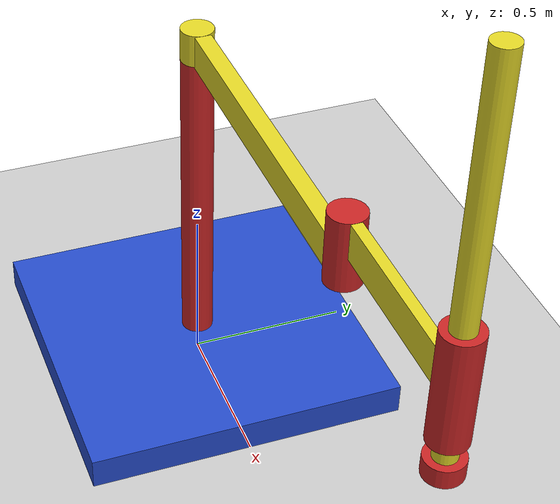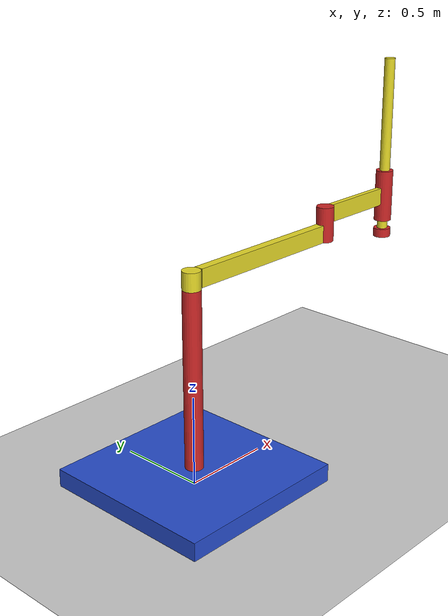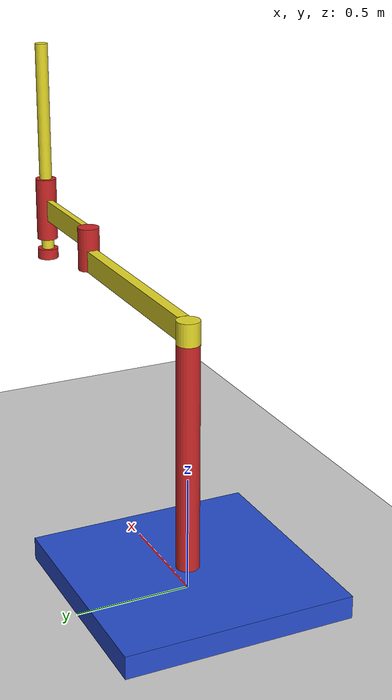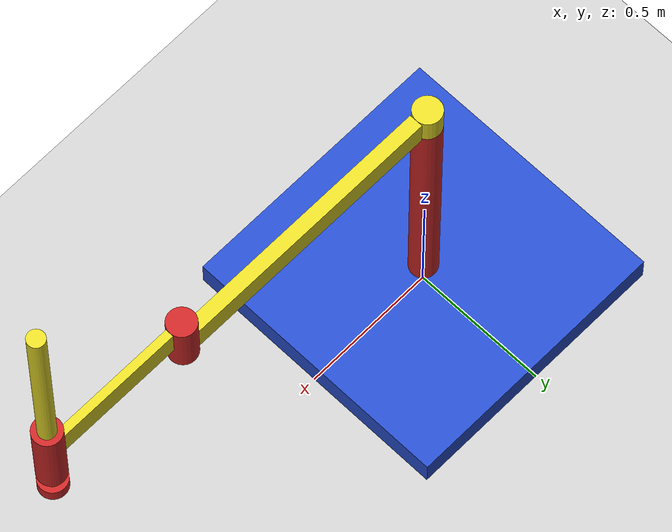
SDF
<sdf version="1.6">
 <world name="default">
  <plugin name="gazebo_ros_properties" filename="libgazebo_ros_properties.so">
   <ros><namespace>/demo</namespace></ros>
  </plugin>
  <light name="sun" type="directional">
   <pose>0 0 10 0 -0 0</pose>
   <diffuse>0.8 0.8 0.8 1</diffuse>
   <specular>0.2 0.2 0.2 1</specular>
   <attenuation>
    <range>1000</range>
    <constant>0.9</constant>
    <linear>0.01</linear>
    <quadratic>0.001</quadratic>
   </attenuation>
   <direction>-0.5 0.1 -0.9</direction>
  </light>
  <model name="ground_plane">
   <static>1</static>
   <link name="link">
    <collision name="collision">
     <geometry><plane><normal>0 0 1</normal><size>100 100</size></plane></geometry>
     <surface><friction><ode><mu>100</mu><mu2>50</mu2></ode></friction></surface>
    </collision>
    <visual name="visual">
     <cast_shadows>0</cast_shadows>
     <geometry><plane><normal>0 0 1</normal><size>100 100</size></plane></geometry>
     <material>
      <script><uri>file://media/materials/scripts/gazebo.material</uri><name>Gazebo/Grey</name></script>
     </material>
    </visual>
   </link>
  </model>
  <gravity>0 0 -9.8</gravity>
  <magnetic_field>6e-06 2.3e-05 -4.2e-05</magnetic_field>
  <atmosphere type="adiabatic"/>
  <physics name="default_physics" default="0" type="ode">
   <max_step_size>0.001</max_step_size>
   <real_time_factor>1</real_time_factor>
   <real_time_update_rate>1000</real_time_update_rate>
  </physics>
  <scene><ambient>0.4 0.4 0.4 1</ambient><background>0.7 0.7 0.7 1</background><shadows>1</shadows></scene>
  <spherical_coordinates>
   <surface_model>EARTH_WGS84</surface_model>
   <latitude_deg>0</latitude_deg>
   <longitude_deg>0</longitude_deg>
   <elevation>0</elevation>
   <heading_deg>0</heading_deg>
  </spherical_coordinates>
  <model name="simple_arm">
   <link name="arm_base">
    <inertial>
     <pose>0 0 0.00099 0 -0 0</pose>
     <inertia><ixx>1.11</ixx><ixy>0</ixy><ixz>0</ixz><iyy>100.11</iyy><iyz>0</iyz><izz>1.01</izz></inertia>
     <mass>101</mass>
    </inertial>
    <collision name="arm_base_geom">
     <pose>0 0 0.05 0 -0 0</pose>
     <geometry><box><size>1 1 0.1</size></box></geometry>
    </collision>
    <visual name="arm_base_geom_visual">
     <pose>0 0 0.05 0 -0 0</pose>
     <geometry><box><size>1 1 0.1</size></box></geometry>
     <material>
      <script><uri>file://media/materials/scripts/gazebo.material</uri><name>Gazebo/Blue</name></script>
     </material>
    </visual>
    <collision name="arm_base_geom_arm_trunk">
     <pose>0 0 0.6 0 -0 0</pose>
     <geometry><cylinder><radius>0.05</radius><length>1</length></cylinder></geometry>
    </collision>
    <visual name="arm_base_geom_arm_trunk_visual">
     <pose>0 0 0.6 0 -0 0</pose>
     <geometry><cylinder><radius>0.05</radius><length>1</length></cylinder></geometry>
     <material>
      <script><uri>file://media/materials/scripts/gazebo.material</uri><name>Gazebo/Red</name></script>
     </material>
    </visual>
   </link>
   <link name="arm_shoulder_pan">
    <pose>0 0 1.1 0 -0 0</pose>
    <inertial>
     <pose>0.045455 0 0 0 -0 0</pose>
     <inertia><ixx>0.011</ixx><ixy>0</ixy><ixz>0</ixz><iyy>0.0225</iyy><iyz>0</iyz><izz>0.0135</izz></inertia>
     <mass>1.1</mass>
    </inertial>
    <collision name="arm_shoulder_pan_geom">
     <pose>0 0 0.05 0 -0 0</pose>
     <geometry><cylinder><radius>0.05</radius><length>0.1</length></cylinder></geometry>
    </collision>
    <visual name="arm_shoulder_pan_geom_visual">
     <pose>0 0 0.05 0 -0 0</pose>
     <geometry><cylinder><radius>0.05</radius><length>0.1</length></cylinder></geometry>
     <material>
      <script><uri>file://media/materials/scripts/gazebo.material</uri><name>Gazebo/Yellow</name></script>
     </material>
    </visual>
    <collision name="arm_shoulder_pan_geom_arm_shoulder">
     <pose>0.55 0 0.05 0 -0 0</pose>
     <geometry><box><size>1 0.05 0.1</size></box></geometry>
    </collision>
    <visual name="arm_shoulder_pan_geom_arm_shoulder_visual">
     <pose>0.55 0 0.05 0 -0 0</pose>
     <geometry><box><size>1 0.05 0.1</size></box></geometry>
     <material>
      <script><uri>file://media/materials/scripts/gazebo.material</uri><name>Gazebo/Yellow</name></script>
     </material>
    </visual>
   </link>
   <link name="arm_elbow_pan">
    <pose>1.05 0 1.1 0 -0 0</pose>
    <inertial>
     <pose>0.0875 0 0.083333 0 -0 0</pose>
     <inertia>
      <ixx>0.031</ixx>
      <ixy>0</ixy>
      <ixz>0.005</ixz>
      <iyy>0.07275</iyy>
      <iyz>0</iyz>
      <izz>0.04475</izz>
     </inertia>
     <mass>1.2</mass>
    </inertial>
    <collision name="arm_elbow_pan_geom">
     <pose>0 0 0.1 0 -0 0</pose>
     <geometry><cylinder><radius>0.05</radius><length>0.2</length></cylinder></geometry>
    </collision>
    <visual name="arm_elbow_pan_geom_visual">
     <pose>0 0 0.1 0 -0 0</pose>
     <geometry><cylinder><radius>0.05</radius><length>0.2</length></cylinder></geometry>
     <material>
      <script><uri>file://media/materials/scripts/gazebo.material</uri><name>Gazebo/Red</name></script>
     </material>
    </visual>
    <collision name="arm_elbow_pan_geom_arm_elbow">
     <pose>0.3 0 0.15 0 -0 0</pose>
     <geometry><box><size>0.5 0.03 0.1</size></box></geometry>
    </collision>
    <visual name="arm_elbow_pan_geom_arm_elbow_visual">
     <pose>0.3 0 0.15 0 -0 0</pose>
     <geometry><box><size>0.5 0.03 0.1</size></box></geometry>
     <material>
      <script><uri>file://media/materials/scripts/gazebo.material</uri><name>Gazebo/Yellow</name></script>
     </material>
    </visual>
    <collision name="arm_elbow_pan_geom_arm_wrist">
     <pose>0.55 0 0.15 0 -0 0</pose>
     <geometry><cylinder><radius>0.05</radius><length>0.3</length></cylinder></geometry>
    </collision>
    <visual name="arm_elbow_pan_geom_arm_wrist_visual">
     <pose>0.55 0 0.15 0 -0 0</pose>
     <geometry><cylinder><radius>0.05</radius><length>0.3</length></cylinder></geometry>
     <material>
      <script><uri>file://media/materials/scripts/gazebo.material</uri><name>Gazebo/Red</name></script>
     </material>
    </visual>
   </link>
   <link name="arm_wrist_lift">
    <pose>1.6 0 1.05 0 -0 0</pose>
    <inertial>
     <inertia><ixx>0.01</ixx><ixy>0</ixy><ixz>0</ixz><iyy>0.01</iyy><iyz>0</iyz><izz>0.001</izz></inertia>
     <mass>0.1</mass>
    </inertial>
    <collision name="arm_wrist_lift_geom">
     <pose>0 0 0.5 0 -0 0</pose>
     <geometry><cylinder><radius>0.03</radius><length>1</length></cylinder></geometry>
    </collision>
    <visual name="arm_wrist_lift_geom_visual">
     <pose>0 0 0.5 0 -0 0</pose>
     <geometry><cylinder><radius>0.03</radius><length>1</length></cylinder></geometry>
     <material>
      <script><uri>file://media/materials/scripts/gazebo.material</uri><name>Gazebo/Yellow</name></script>
     </material>
    </visual>
   </link>
   <link name="arm_wrist_roll">
    <pose>1.6 0 1 0 -0 0</pose>
    <inertial>
     <inertia><ixx>0.01</ixx><ixy>0</ixy><ixz>0</ixz><iyy>0.01</iyy><iyz>0</iyz><izz>0.001</izz></inertia>
     <mass>0.1</mass>
    </inertial>
    <collision name="arm_wrist_roll_geom">
     <pose>0 0 0.025 0 -0 0</pose>
     <geometry><cylinder><radius>0.05</radius><length>0.05</length></cylinder></geometry>
    </collision>
    <visual name="arm_wrist_roll_geom_visual">
     <pose>0 0 0.025 0 -0 0</pose>
     <geometry><cylinder><radius>0.05</radius><length>0.05</length></cylinder></geometry>
     <material>
      <script><uri>file://media/materials/scripts/gazebo.material</uri><name>Gazebo/Red</name></script>
     </material>
    </visual>
   </link>
   <joint name="arm_shoulder_pan_joint" type="revolute">
    <parent>arm_base</parent>
    <child>arm_shoulder_pan</child>
    <axis>
     <dynamics>
      <damping>1</damping>
      <friction>0</friction>
      <spring_reference>0</spring_reference>
      <spring_stiffness>0</spring_stiffness>
     </dynamics>
     <xyz>0 0 1</xyz>
     <use_parent_model_frame>1</use_parent_model_frame>
     <limit><lower>-1e+16</lower><upper>1e+16</upper></limit>
    </axis>
   </joint>
   <joint name="arm_elbow_pan_joint" type="revolute">
    <parent>arm_shoulder_pan</parent>
    <child>arm_elbow_pan</child>
    <axis>
     <dynamics>
      <damping>1</damping>
      <friction>0</friction>
      <spring_reference>0</spring_reference>
      <spring_stiffness>0</spring_stiffness>
     </dynamics>
     <xyz>0 0 1</xyz>
     <use_parent_model_frame>1</use_parent_model_frame>
     <limit><lower>-1e+16</lower><upper>1e+16</upper></limit>
    </axis>
   </joint>
   <joint name="arm_wrist_lift_joint" type="prismatic">
    <parent>arm_elbow_pan</parent>
    <child>arm_wrist_lift</child>
    <axis>
     <dynamics>
      <damping>1</damping>
      <friction>0</friction>
      <spring_reference>0</spring_reference>
      <spring_stiffness>0</spring_stiffness>
     </dynamics>
     <limit><lower>-0.8</lower><upper>0.1</upper></limit>
     <xyz>0 0 1</xyz>
     <use_parent_model_frame>1</use_parent_model_frame>
    </axis>
   </joint>
   <joint name="arm_wrist_roll_joint" type="revolute">
    <parent>arm_wrist_lift</parent>
    <child>arm_wrist_roll</child>
    <axis>
     <dynamics>
      <damping>1</damping>
      <friction>0</friction>
      <spring_reference>0</spring_reference>
      <spring_stiffness>0</spring_stiffness>
     </dynamics>
     <limit><lower>-2.99999</lower><upper>2.99999</upper></limit>
     <xyz>0 0 1</xyz>
     <use_parent_model_frame>1</use_parent_model_frame>
    </axis>
   </joint>
   <pose>-8.1e-05 8.1e-05 -0 0 0 -0.003396</pose>
  </model>
 </world>
</sdf>
